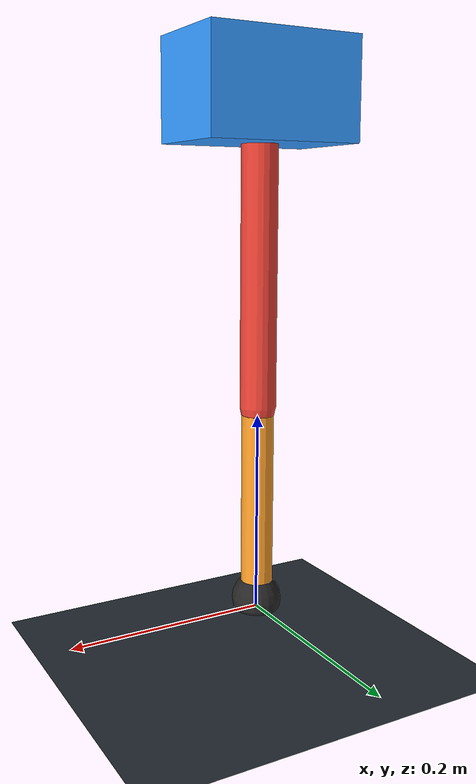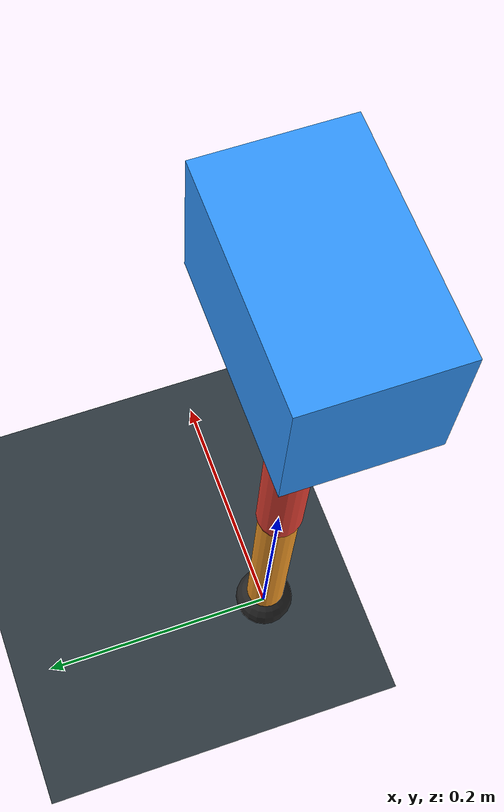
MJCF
<mujoco model="single_axis_two_bar">
  <compiler angle="radian" inertiafromgeom="true"/>
  <option timestep="0.001" integrator="implicitfast" gravity="0 0 -9.81"/>
  <default>
    <joint damping="0.08"/>
    <geom friction="1.2 0.01 0.0001" condim="3"/>
  </default>
  <worldbody>
    <geom name="floor" type="plane" size="5 5 0.1" rgba="0.18 0.22 0.25 1"/>
    <body name="carriage" pos="0 0 0.5152867171375088">
      <joint name="pole_slide" type="slide" axis="0 0 1"/>
      <geom name="payload" type="box" size="0.08 0.05 0.05" mass="3.0875507374418523" rgba="0.2 0.6 1 1"/>
      <body name="thigh" pos="0 0 0">
        <joint name="hip" type="hinge" axis="0 1 0"/>
        <geom name="thigh_link" type="capsule" fromto="0 0 0 0 0 -0.30655075675991805" size="0.018" mass="0.21842146490230457" rgba="0.9 0.25 0.2 1"/>
        <body name="shank" pos="0 0 -0.30655075675991805">
          <joint name="knee" type="hinge" axis="0 1 0"/>
          <geom name="shank_link" type="capsule" fromto="0 0 0 0 0 -0.19889946709318387" size="0.016" mass="0.14171849852846718" rgba="0.95 0.6 0.15 1"/>
          <geom name="foot" type="sphere" pos="0 0 -0.19889946709318387" size="0.025" mass="0.03" rgba="0.15 0.15 0.15 1"/>
          <site name="toe" pos="0 0 -0.19889946709318387" size="0.008"/>
        </body>
      </body>
    </body>
  </worldbody>
  <actuator>
    <motor name="hip_motor" joint="hip" ctrlrange="-49.67941389439426 49.67941389439426"/>
    <motor name="knee_motor" joint="knee" ctrlrange="-61.20963061930824 61.20963061930824"/>
  </actuator>
</mujoco>
